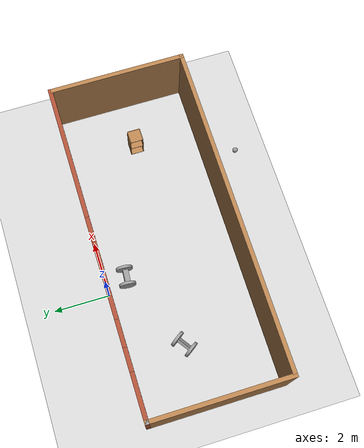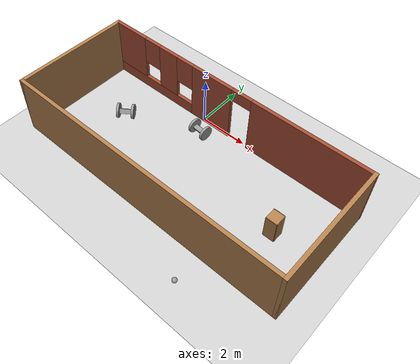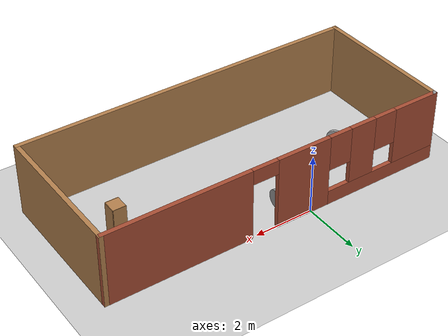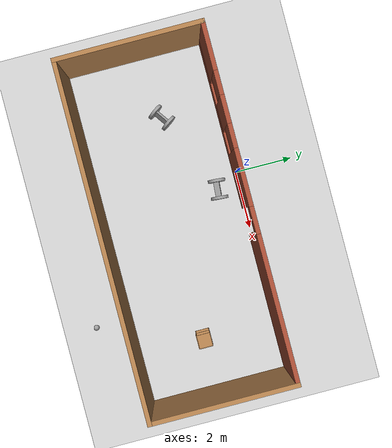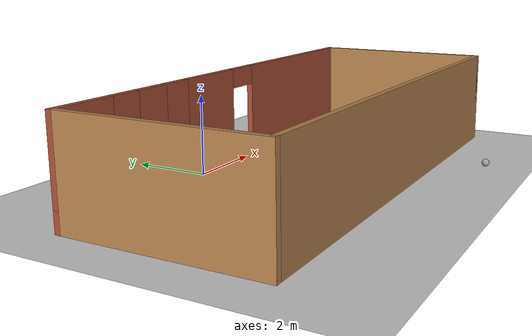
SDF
<sdf version="1.6">
 <world name="default">
  <light name="sun" type="directional">
   <pose>0 0 10 0 -0 0</pose>
   <diffuse>0.8 0.8 0.8 1</diffuse>
   <specular>0.2 0.2 0.2 1</specular>
   <attenuation>
    <range>1000</range>
    <constant>0.9</constant>
    <linear>0.01</linear>
    <quadratic>0.001</quadratic>
   </attenuation>
   <direction>-0.5 0.1 -0.9</direction>
  </light>
  <model name="ground_plane">
   <static>1</static>
   <link name="link">
    <collision name="collision">
     <geometry><plane><normal>0 0 1</normal><size>100 100</size></plane></geometry>
     <surface>
      <contact><collide_bitmask>65535</collide_bitmask></contact>
      <friction><ode><mu>100</mu><mu2>50</mu2></ode></friction>
     </surface>
    </collision>
    <visual name="visual">
     <cast_shadows>0</cast_shadows>
     <geometry><plane><normal>0 0 1</normal><size>100 100</size></plane></geometry>
     <material>
      <script><uri>file://media/materials/scripts/gazebo.material</uri><name>Gazebo/Grey</name></script>
     </material>
    </visual>
   </link>
  </model>
  <gravity>0 0 -9.8</gravity>
  <magnetic_field>6e-06 2.3e-05 -4.2e-05</magnetic_field>
  <atmosphere type="adiabatic"/>
  <physics name="default_physics" default="0" type="ode">
   <max_step_size>0.001</max_step_size>
   <real_time_factor>1</real_time_factor>
   <real_time_update_rate>1000</real_time_update_rate>
  </physics>
  <scene><ambient>0.4 0.4 0.4 1</ambient><background>0.7 0.7 0.7 1</background><shadows>1</shadows></scene>
  <spherical_coordinates>
   <surface_model>EARTH_WGS84</surface_model>
   <latitude_deg>0</latitude_deg>
   <longitude_deg>0</longitude_deg>
   <elevation>0</elevation>
   <heading_deg>0</heading_deg>
  </spherical_coordinates>
  <model name="wheeled_1">
   <link name="link_0">
    <pose>-0 -0.013335 0 0 -0 0</pose>
    <inertial>
     <mass>1</mass>
     <inertia>
      <ixx>0.166667</ixx>
      <ixy>0</ixy>
      <ixz>0</ixz>
      <iyy>0.166667</iyy>
      <iyz>0</iyz>
      <izz>0.166667</izz>
     </inertia>
    </inertial>
    <visual name="visual">
     <geometry><box><size>0.5 0.2 0.1</size></box></geometry>
     <material>
      <lighting>1</lighting>
      <script><uri>file://media/materials/scripts/gazebo.material</uri><name>Gazebo/Grey</name></script>
      <shader type="pixel"><normal_map>__default__</normal_map></shader>
      <ambient>0.3 0.3 0.3 1</ambient>
      <diffuse>0.7 0.7 0.7 1</diffuse>
      <specular>0.01 0.01 0.01 1</specular>
      <emissive>0 0 0 1</emissive>
     </material>
    </visual>
    <collision name="collision">
     <geometry><box><size>0.5 0.2 0.1</size></box></geometry>
     <surface>
      <friction>
       <ode><mu>1</mu><mu2>1</mu2><fdir1>0 0 0</fdir1><slip1>0</slip1><slip2>0</slip2></ode>
       <torsional>
        <coefficient>1</coefficient>
        <patch_radius>0</patch_radius>
        <surface_radius>0</surface_radius>
        <use_patch_radius>1</use_patch_radius>
        <ode><slip>0</slip></ode>
       </torsional>
      </friction>
      <bounce><restitution_coefficient>0</restitution_coefficient><threshold>1e+06</threshold></bounce>
      <contact>
       <collide_without_contact>0</collide_without_contact>
       <collide_without_contact_bitmask>1</collide_without_contact_bitmask>
       <collide_bitmask>1</collide_bitmask>
       <ode>
        <soft_cfm>0</soft_cfm>
        <soft_erp>0.2</soft_erp>
        <kp>1e+13</kp>
        <kd>1</kd>
        <max_vel>0.01</max_vel>
        <min_depth>0</min_depth>
       </ode>
       <bullet>
        <split_impulse>1</split_impulse>
        <split_impulse_penetration_threshold>-0.01</split_impulse_penetration_threshold>
        <soft_cfm>0</soft_cfm>
        <soft_erp>0.2</soft_erp>
        <kp>1e+13</kp>
        <kd>1</kd>
       </bullet>
      </contact>
     </surface>
    </collision>
   </link>
   <link name="link_1">
    <pose>0.300058 0.00667 0 1.5707 0 1.5707</pose>
    <inertial>
     <mass>1</mass>
     <inertia><ixx>0.145833</ixx><ixy>0</ixy><ixz>0</ixz><iyy>0.145833</iyy><iyz>0</iyz><izz>0.125</izz></inertia>
    </inertial>
    <visual name="visual">
     <geometry><cylinder><radius>0.3</radius><length>0.1</length></cylinder></geometry>
     <material>
      <lighting>1</lighting>
      <script><uri>file://media/materials/scripts/gazebo.material</uri><name>Gazebo/Grey</name></script>
      <shader type="pixel"><normal_map>__default__</normal_map></shader>
      <ambient>0.3 0.3 0.3 1</ambient>
      <diffuse>0.7 0.7 0.7 1</diffuse>
      <specular>0.01 0.01 0.01 1</specular>
      <emissive>0 0 0 1</emissive>
     </material>
    </visual>
    <collision name="collision">
     <geometry><cylinder><radius>0.3</radius><length>0.1</length></cylinder></geometry>
     <surface>
      <friction>
       <ode><mu>1</mu><mu2>1</mu2><fdir1>0 0 0</fdir1><slip1>0</slip1><slip2>0</slip2></ode>
       <torsional>
        <coefficient>1</coefficient>
        <patch_radius>0</patch_radius>
        <surface_radius>0</surface_radius>
        <use_patch_radius>1</use_patch_radius>
        <ode><slip>0</slip></ode>
       </torsional>
      </friction>
      <bounce><restitution_coefficient>0</restitution_coefficient><threshold>1e+06</threshold></bounce>
      <contact>
       <collide_without_contact>0</collide_without_contact>
       <collide_without_contact_bitmask>1</collide_without_contact_bitmask>
       <collide_bitmask>1</collide_bitmask>
       <ode>
        <soft_cfm>0</soft_cfm>
        <soft_erp>0.2</soft_erp>
        <kp>1e+13</kp>
        <kd>1</kd>
        <max_vel>0.01</max_vel>
        <min_depth>0</min_depth>
       </ode>
       <bullet>
        <split_impulse>1</split_impulse>
        <split_impulse_penetration_threshold>-0.01</split_impulse_penetration_threshold>
        <soft_cfm>0</soft_cfm>
        <soft_erp>0.2</soft_erp>
        <kp>1e+13</kp>
        <kd>1</kd>
       </bullet>
      </contact>
     </surface>
    </collision>
   </link>
   <link name="link_1_clone">
    <pose>-0.300058 0.006665 0 1.5707 0 1.5707</pose>
    <inertial>
     <mass>1</mass>
     <inertia><ixx>0.145833</ixx><ixy>0</ixy><ixz>0</ixz><iyy>0.145833</iyy><iyz>0</iyz><izz>0.125</izz></inertia>
    </inertial>
    <visual name="visual">
     <geometry><cylinder><radius>0.3</radius><length>0.1</length></cylinder></geometry>
     <material>
      <lighting>1</lighting>
      <script><uri>file://media/materials/scripts/gazebo.material</uri><name>Gazebo/Grey</name></script>
      <shader type="pixel"><normal_map>__default__</normal_map></shader>
      <ambient>0.3 0.3 0.3 1</ambient>
      <diffuse>0.7 0.7 0.7 1</diffuse>
      <specular>0.01 0.01 0.01 1</specular>
      <emissive>0 0 0 1</emissive>
     </material>
    </visual>
    <collision name="collision">
     <geometry><cylinder><radius>0.3</radius><length>0.1</length></cylinder></geometry>
     <surface>
      <friction>
       <ode><mu>1</mu><mu2>1</mu2><fdir1>0 0 0</fdir1><slip1>0</slip1><slip2>0</slip2></ode>
       <torsional>
        <coefficient>1</coefficient>
        <patch_radius>0</patch_radius>
        <surface_radius>0</surface_radius>
        <use_patch_radius>1</use_patch_radius>
        <ode><slip>0</slip></ode>
       </torsional>
      </friction>
      <bounce><restitution_coefficient>0</restitution_coefficient><threshold>1e+06</threshold></bounce>
      <contact>
       <collide_without_contact>0</collide_without_contact>
       <collide_without_contact_bitmask>1</collide_without_contact_bitmask>
       <collide_bitmask>1</collide_bitmask>
       <ode>
        <soft_cfm>0</soft_cfm>
        <soft_erp>0.2</soft_erp>
        <kp>1e+13</kp>
        <kd>1</kd>
        <max_vel>0.01</max_vel>
        <min_depth>0</min_depth>
       </ode>
       <bullet>
        <split_impulse>1</split_impulse>
        <split_impulse_penetration_threshold>-0.01</split_impulse_penetration_threshold>
        <soft_cfm>0</soft_cfm>
        <soft_erp>0.2</soft_erp>
        <kp>1e+13</kp>
        <kd>1</kd>
       </bullet>
      </contact>
     </surface>
    </collision>
   </link>
   <joint name="link_0_JOINT_0" type="revolute">
    <parent>link_0</parent>
    <child>link_1_clone</child>
    <axis>
     <xyz>0 0 1</xyz>
     <use_parent_model_frame>0</use_parent_model_frame>
     <limit>
      <lower>-1.79769e+308</lower>
      <upper>1.79769e+308</upper>
      <effort>-1</effort>
      <velocity>-1</velocity>
     </limit>
     <dynamics>
      <spring_reference>0</spring_reference>
      <spring_stiffness>0</spring_stiffness>
      <damping>0</damping>
     </dynamics>
    </axis>
    <physics>
     <ode><limit><cfm>0</cfm><erp>0.2</erp></limit><suspension><cfm>0</cfm><erp>0.2</erp></suspension></ode>
    </physics>
   </joint>
   <joint name="link_0_JOINT_1" type="revolute">
    <parent>link_0</parent>
    <child>link_1</child>
    <axis>
     <xyz>0 0 -1</xyz>
     <use_parent_model_frame>0</use_parent_model_frame>
     <limit>
      <lower>-1.79769e+308</lower>
      <upper>1.79769e+308</upper>
      <effort>-1</effort>
      <velocity>-1</velocity>
     </limit>
     <dynamics>
      <spring_reference>0</spring_reference>
      <spring_stiffness>0</spring_stiffness>
      <damping>0</damping>
     </dynamics>
    </axis>
    <physics>
     <ode><limit><cfm>0</cfm><erp>0.2</erp></limit><suspension><cfm>0</cfm><erp>0.2</erp></suspension></ode>
    </physics>
   </joint>
   <static>0</static>
   <pose>0.420301 -0.762962 0.298182 0.276693 2e-06 -0.075275</pose>
  </model>
  <model name="rectangle_building_1">
   <pose>1.17854 -2.44652 0 0 -0 0</pose>
   <link name="Wall_13">
    <collision name="Wall_13_Collision">
     <geometry><box><size>0.15 0.15 2.5</size></box></geometry>
     <pose>0 0 1.25 0 -0 0</pose>
    </collision>
    <visual name="Wall_13_Visual">
     <pose>0 0 1.25 0 -0 0</pose>
     <geometry><box><size>0.15 0.15 2.5</size></box></geometry>
     <material>
      <script><uri>file://media/materials/scripts/gazebo.material</uri><name>Gazebo/Grey</name></script>
      <ambient>1 1 1 1</ambient>
     </material>
     <meta><layer>0</layer></meta>
    </visual>
    <pose>-5.925 2.425 0 0 -0 0</pose>
   </link>
   <link name="Wall_26">
    <collision name="Wall_26_Collision">
     <geometry><box><size>5 0.15 2.5</size></box></geometry>
     <pose>0 0 1.25 0 -0 0</pose>
    </collision>
    <visual name="Wall_26_Visual">
     <pose>0 0 1.25 0 -0 0</pose>
     <geometry><box><size>5 0.15 2.5</size></box></geometry>
     <material>
      <script><uri>file://media/materials/scripts/gazebo.material</uri><name>Gazebo/Wood</name></script>
      <ambient>1 1 1 1</ambient>
     </material>
     <meta><layer>0</layer></meta>
    </visual>
    <pose>-5.925 0 0 0 0 -1.5708</pose>
   </link>
   <link name="Wall_27">
    <collision name="Wall_27_Collision">
     <geometry><box><size>12 0.15 2.5</size></box></geometry>
     <pose>0 0 1.25 0 -0 0</pose>
    </collision>
    <visual name="Wall_27_Visual">
     <pose>0 0 1.25 0 -0 0</pose>
     <geometry><box><size>12 0.15 2.5</size></box></geometry>
     <material>
      <script><uri>file://media/materials/scripts/gazebo.material</uri><name>Gazebo/Wood</name></script>
      <ambient>0.435294 0.796078 0.67451 1</ambient>
     </material>
     <meta><layer>0</layer></meta>
    </visual>
    <pose>0 -2.425 0 0 -0 0</pose>
   </link>
   <link name="Wall_28">
    <collision name="Wall_28_Collision">
     <geometry><box><size>5 0.15 2.5</size></box></geometry>
     <pose>0 0 1.25 0 -0 0</pose>
    </collision>
    <visual name="Wall_28_Visual">
     <pose>0 0 1.25 0 -0 0</pose>
     <geometry><box><size>5 0.15 2.5</size></box></geometry>
     <material>
      <script><uri>file://media/materials/scripts/gazebo.material</uri><name>Gazebo/Wood</name></script>
      <ambient>0.996078 0.47451 0.0196078 1</ambient>
     </material>
     <meta><layer>0</layer></meta>
    </visual>
    <pose>5.925 0 0 0 -0 1.5708</pose>
   </link>
   <link name="Wall_29">
    <pose>0 2.425 0 0 -0 3.14159</pose>
    <visual name="Wall_29_Visual_0">
     <pose>-3.50367 0 1.25 0 -0 0</pose>
     <geometry><box><size>4.99266 0.15 2.5</size></box></geometry>
     <material>
      <script><uri>file://media/materials/scripts/gazebo.material</uri><name>Gazebo/Bricks</name></script>
      <ambient>1 1 1 1</ambient>
     </material>
     <meta><layer>0</layer></meta>
    </visual>
    <collision name="Wall_29_Collision_0">
     <geometry><box><size>4.99266 0.15 2.5</size></box></geometry>
     <pose>-3.50367 0 1.25 0 -0 0</pose>
    </collision>
    <visual name="Wall_29_Visual_1">
     <pose>0.843056 0 1.25 0 -0 0</pose>
     <geometry><box><size>1.9008 0.15 2.5</size></box></geometry>
     <material>
      <script><uri>file://media/materials/scripts/gazebo.material</uri><name>Gazebo/Bricks</name></script>
      <ambient>1 1 1 1</ambient>
     </material>
     <meta><layer>0</layer></meta>
    </visual>
    <collision name="Wall_29_Collision_1">
     <geometry><box><size>1.9008 0.15 2.5</size></box></geometry>
     <pose>0.843056 0 1.25 0 -0 0</pose>
    </collision>
    <visual name="Wall_29_Visual_2">
     <pose>3.89673 0 0.25 0 -0 0</pose>
     <geometry><box><size>4.20654 0.15 0.5</size></box></geometry>
     <material>
      <script><uri>file://media/materials/scripts/gazebo.material</uri><name>Gazebo/Bricks</name></script>
      <ambient>1 1 1 1</ambient>
     </material>
     <meta><layer>0</layer></meta>
    </visual>
    <collision name="Wall_29_Collision_2">
     <geometry><box><size>4.20654 0.15 0.5</size></box></geometry>
     <pose>3.89673 0 0.25 0 -0 0</pose>
    </collision>
    <visual name="Wall_29_Visual_3">
     <pose>3.05969 0 1.5 0 -0 0</pose>
     <geometry><box><size>0.932475 0.15 2</size></box></geometry>
     <material>
      <script><uri>file://media/materials/scripts/gazebo.material</uri><name>Gazebo/Bricks</name></script>
      <ambient>1 1 1 1</ambient>
     </material>
     <meta><layer>0</layer></meta>
    </visual>
    <collision name="Wall_29_Collision_3">
     <geometry><box><size>0.932475 0.15 2</size></box></geometry>
     <pose>3.05969 0 1.5 0 -0 0</pose>
    </collision>
    <visual name="Wall_29_Visual_4">
     <pose>5.16297 0 1.5 0 -0 0</pose>
     <geometry><box><size>1.67407 0.15 2</size></box></geometry>
     <material>
      <script><uri>file://media/materials/scripts/gazebo.material</uri><name>Gazebo/Bricks</name></script>
      <ambient>1 1 1 1</ambient>
     </material>
     <meta><layer>0</layer></meta>
    </visual>
    <collision name="Wall_29_Collision_4">
     <geometry><box><size>1.67407 0.15 2</size></box></geometry>
     <pose>5.16297 0 1.5 0 -0 0</pose>
    </collision>
    <visual name="Wall_29_Visual_5">
     <pose>2.19346 0 1.9 0 -0 0</pose>
     <geometry><box><size>0.8 0.15 1.2</size></box></geometry>
     <material>
      <script><uri>file://media/materials/scripts/gazebo.material</uri><name>Gazebo/Bricks</name></script>
      <ambient>1 1 1 1</ambient>
     </material>
     <meta><layer>0</layer></meta>
    </visual>
    <collision name="Wall_29_Collision_5">
     <geometry><box><size>0.8 0.15 1.2</size></box></geometry>
     <pose>2.19346 0 1.9 0 -0 0</pose>
    </collision>
    <visual name="Wall_29_Visual_6">
     <pose>3.92593 0 1.9 0 -0 0</pose>
     <geometry><box><size>0.8 0.15 1.2</size></box></geometry>
     <material>
      <script><uri>file://media/materials/scripts/gazebo.material</uri><name>Gazebo/Bricks</name></script>
      <ambient>1 1 1 1</ambient>
     </material>
     <meta><layer>0</layer></meta>
    </visual>
    <collision name="Wall_29_Collision_6">
     <geometry><box><size>0.8 0.15 1.2</size></box></geometry>
     <pose>3.92593 0 1.9 0 -0 0</pose>
    </collision>
    <visual name="Wall_29_Visual_7">
     <pose>-0.557344 0 2.25 0 -0 0</pose>
     <geometry><box><size>0.9 0.15 0.5</size></box></geometry>
     <material>
      <script><uri>file://media/materials/scripts/gazebo.material</uri><name>Gazebo/Bricks</name></script>
      <ambient>1 1 1 1</ambient>
     </material>
     <meta><layer>0</layer></meta>
    </visual>
    <collision name="Wall_29_Collision_7">
     <geometry><box><size>0.9 0.15 0.5</size></box></geometry>
     <pose>-0.557344 0 2.25 0 -0 0</pose>
    </collision>
   </link>
   <static>1</static>
  </model>
  <model name="wheeled_1_clone">
   <link name="link_0">
    <pose>-0 -0.013335 0 0 -0 0</pose>
    <inertial>
     <mass>1</mass>
     <inertia>
      <ixx>0.166667</ixx>
      <ixy>0</ixy>
      <ixz>0</ixz>
      <iyy>0.166667</iyy>
      <iyz>0</iyz>
      <izz>0.166667</izz>
     </inertia>
    </inertial>
    <visual name="visual">
     <geometry><box><size>0.5 0.2 0.1</size></box></geometry>
     <material>
      <lighting>1</lighting>
      <script><uri>file://media/materials/scripts/gazebo.material</uri><name>Gazebo/Grey</name></script>
      <shader type="pixel"><normal_map>__default__</normal_map></shader>
      <ambient>0.3 0.3 0.3 1</ambient>
      <diffuse>0.7 0.7 0.7 1</diffuse>
      <specular>0.01 0.01 0.01 1</specular>
      <emissive>0 0 0 1</emissive>
     </material>
    </visual>
    <collision name="collision">
     <geometry><box><size>0.5 0.2 0.1</size></box></geometry>
     <surface>
      <friction>
       <ode><mu>1</mu><mu2>1</mu2><fdir1>0 0 0</fdir1><slip1>0</slip1><slip2>0</slip2></ode>
       <torsional>
        <coefficient>1</coefficient>
        <patch_radius>0</patch_radius>
        <surface_radius>0</surface_radius>
        <use_patch_radius>1</use_patch_radius>
        <ode><slip>0</slip></ode>
       </torsional>
      </friction>
      <bounce><restitution_coefficient>0</restitution_coefficient><threshold>1e+06</threshold></bounce>
      <contact>
       <collide_without_contact>0</collide_without_contact>
       <collide_without_contact_bitmask>1</collide_without_contact_bitmask>
       <collide_bitmask>1</collide_bitmask>
       <ode>
        <soft_cfm>0</soft_cfm>
        <soft_erp>0.2</soft_erp>
        <kp>1e+13</kp>
        <kd>1</kd>
        <max_vel>0.01</max_vel>
        <min_depth>0</min_depth>
       </ode>
       <bullet>
        <split_impulse>1</split_impulse>
        <split_impulse_penetration_threshold>-0.01</split_impulse_penetration_threshold>
        <soft_cfm>0</soft_cfm>
        <soft_erp>0.2</soft_erp>
        <kp>1e+13</kp>
        <kd>1</kd>
       </bullet>
      </contact>
     </surface>
    </collision>
   </link>
   <link name="link_1">
    <pose>0.300058 0.00667 0 1.5707 0 1.5707</pose>
    <inertial>
     <mass>1</mass>
     <inertia><ixx>0.145833</ixx><ixy>0</ixy><ixz>0</ixz><iyy>0.145833</iyy><iyz>0</iyz><izz>0.125</izz></inertia>
    </inertial>
    <visual name="visual">
     <geometry><cylinder><radius>0.3</radius><length>0.1</length></cylinder></geometry>
     <material>
      <lighting>1</lighting>
      <script><uri>file://media/materials/scripts/gazebo.material</uri><name>Gazebo/Grey</name></script>
      <shader type="pixel"><normal_map>__default__</normal_map></shader>
      <ambient>0.3 0.3 0.3 1</ambient>
      <diffuse>0.7 0.7 0.7 1</diffuse>
      <specular>0.01 0.01 0.01 1</specular>
      <emissive>0 0 0 1</emissive>
     </material>
    </visual>
    <collision name="collision">
     <geometry><cylinder><radius>0.3</radius><length>0.1</length></cylinder></geometry>
     <surface>
      <friction>
       <ode><mu>1</mu><mu2>1</mu2><fdir1>0 0 0</fdir1><slip1>0</slip1><slip2>0</slip2></ode>
       <torsional>
        <coefficient>1</coefficient>
        <patch_radius>0</patch_radius>
        <surface_radius>0</surface_radius>
        <use_patch_radius>1</use_patch_radius>
        <ode><slip>0</slip></ode>
       </torsional>
      </friction>
      <bounce><restitution_coefficient>0</restitution_coefficient><threshold>1e+06</threshold></bounce>
      <contact>
       <collide_without_contact>0</collide_without_contact>
       <collide_without_contact_bitmask>1</collide_without_contact_bitmask>
       <collide_bitmask>1</collide_bitmask>
       <ode>
        <soft_cfm>0</soft_cfm>
        <soft_erp>0.2</soft_erp>
        <kp>1e+13</kp>
        <kd>1</kd>
        <max_vel>0.01</max_vel>
        <min_depth>0</min_depth>
       </ode>
       <bullet>
        <split_impulse>1</split_impulse>
        <split_impulse_penetration_threshold>-0.01</split_impulse_penetration_threshold>
        <soft_cfm>0</soft_cfm>
        <soft_erp>0.2</soft_erp>
        <kp>1e+13</kp>
        <kd>1</kd>
       </bullet>
      </contact>
     </surface>
    </collision>
   </link>
   <link name="link_1_clone">
    <pose>-0.300058 0.006665 0 1.5707 0 1.5707</pose>
    <inertial>
     <mass>1</mass>
     <inertia><ixx>0.145833</ixx><ixy>0</ixy><ixz>0</ixz><iyy>0.145833</iyy><iyz>0</iyz><izz>0.125</izz></inertia>
    </inertial>
    <visual name="visual">
     <geometry><cylinder><radius>0.3</radius><length>0.1</length></cylinder></geometry>
     <material>
      <lighting>1</lighting>
      <script><uri>file://media/materials/scripts/gazebo.material</uri><name>Gazebo/Grey</name></script>
      <shader type="pixel"><normal_map>__default__</normal_map></shader>
      <ambient>0.3 0.3 0.3 1</ambient>
      <diffuse>0.7 0.7 0.7 1</diffuse>
      <specular>0.01 0.01 0.01 1</specular>
      <emissive>0 0 0 1</emissive>
     </material>
    </visual>
    <collision name="collision">
     <geometry><cylinder><radius>0.3</radius><length>0.1</length></cylinder></geometry>
     <surface>
      <friction>
       <ode><mu>1</mu><mu2>1</mu2><fdir1>0 0 0</fdir1><slip1>0</slip1><slip2>0</slip2></ode>
       <torsional>
        <coefficient>1</coefficient>
        <patch_radius>0</patch_radius>
        <surface_radius>0</surface_radius>
        <use_patch_radius>1</use_patch_radius>
        <ode><slip>0</slip></ode>
       </torsional>
      </friction>
      <bounce><restitution_coefficient>0</restitution_coefficient><threshold>1e+06</threshold></bounce>
      <contact>
       <collide_without_contact>0</collide_without_contact>
       <collide_without_contact_bitmask>1</collide_without_contact_bitmask>
       <collide_bitmask>1</collide_bitmask>
       <ode>
        <soft_cfm>0</soft_cfm>
        <soft_erp>0.2</soft_erp>
        <kp>1e+13</kp>
        <kd>1</kd>
        <max_vel>0.01</max_vel>
        <min_depth>0</min_depth>
       </ode>
       <bullet>
        <split_impulse>1</split_impulse>
        <split_impulse_penetration_threshold>-0.01</split_impulse_penetration_threshold>
        <soft_cfm>0</soft_cfm>
        <soft_erp>0.2</soft_erp>
        <kp>1e+13</kp>
        <kd>1</kd>
       </bullet>
      </contact>
     </surface>
    </collision>
   </link>
   <joint name="link_0_JOINT_0" type="revolute">
    <parent>link_0</parent>
    <child>link_1_clone</child>
    <axis>
     <xyz>0 0 1</xyz>
     <use_parent_model_frame>0</use_parent_model_frame>
     <limit>
      <lower>-1.79769e+308</lower>
      <upper>1.79769e+308</upper>
      <effort>-1</effort>
      <velocity>-1</velocity>
     </limit>
     <dynamics>
      <spring_reference>0</spring_reference>
      <spring_stiffness>0</spring_stiffness>
      <damping>0</damping>
     </dynamics>
    </axis>
    <physics>
     <ode><limit><cfm>0</cfm><erp>0.2</erp></limit><suspension><cfm>0</cfm><erp>0.2</erp></suspension></ode>
    </physics>
   </joint>
   <joint name="link_0_JOINT_1" type="revolute">
    <parent>link_0</parent>
    <child>link_1</child>
    <axis>
     <xyz>0 0 -1</xyz>
     <use_parent_model_frame>0</use_parent_model_frame>
     <limit>
      <lower>-1.79769e+308</lower>
      <upper>1.79769e+308</upper>
      <effort>-1</effort>
      <velocity>-1</velocity>
     </limit>
     <dynamics>
      <spring_reference>0</spring_reference>
      <spring_stiffness>0</spring_stiffness>
      <damping>0</damping>
     </dynamics>
    </axis>
    <physics>
     <ode><limit><cfm>0</cfm><erp>0.2</erp></limit><suspension><cfm>0</cfm><erp>0.2</erp></suspension></ode>
    </physics>
   </joint>
   <static>0</static>
   <pose>-2.47829 -2.0137 0.294528 0.963074 7e-06 0.612226</pose>
  </model>
  <plugin name="hello_world" filename="libhello_world.so"/>
  <model name="cabinet">
   <static>1</static>
   <link name="cabinet_bottom_plate">
    <inertial>
     <pose>0 0 -1 0 -0 0</pose>
     <inertia><ixx>2.05</ixx><ixy>0</ixy><ixz>0</ixz><iyy>2.05</iyy><iyz>0</iyz><izz>2.05</izz></inertia>
     <mass>25</mass>
    </inertial>
    <collision name="cabinet_bottom_plate_geom">
     <pose>0 0 0.01 0 -0 0</pose>
     <geometry><box><size>0.45 0.45 0.02</size></box></geometry>
    </collision>
    <visual name="cabinet_bottom_plate_geom_visual">
     <pose>0 0 0.01 0 -0 0</pose>
     <geometry><box><size>0.45 0.45 0.02</size></box></geometry>
     <material>
      <script><uri>file://media/materials/scripts/gazebo.material</uri><name>Gazebo/Wood</name></script>
     </material>
    </visual>
    <collision name="cabinet_bottom_plate_geom_cabinet_back_plate">
     <pose>0.235 0 0.51 0 -0 0</pose>
     <geometry><box><size>0.02 0.45 1.02</size></box></geometry>
    </collision>
    <visual name="cabinet_bottom_plate_geom_cabinet_back_plate_visual">
     <pose>0.235 0 0.51 0 -0 0</pose>
     <geometry><box><size>0.02 0.45 1.02</size></box></geometry>
     <material>
      <script><uri>file://media/materials/scripts/gazebo.material</uri><name>Gazebo/Wood</name></script>
     </material>
    </visual>
    <collision name="cabinet_bottom_plate_geom_cabinet_left_plate">
     <pose>0 0.235 0.51 0 -0 0</pose>
     <geometry><box><size>0.45 0.02 1.02</size></box></geometry>
    </collision>
    <visual name="cabinet_bottom_plate_geom_cabinet_left_plate_visual">
     <pose>0 0.235 0.51 0 -0 0</pose>
     <geometry><box><size>0.45 0.02 1.02</size></box></geometry>
     <material>
      <script><uri>file://media/materials/scripts/gazebo.material</uri><name>Gazebo/Wood</name></script>
     </material>
    </visual>
    <collision name="cabinet_bottom_plate_geom_cabinet_middle_plate">
     <pose>0 0 0.51 0 -0 0</pose>
     <geometry><box><size>0.45 0.45 0.02</size></box></geometry>
    </collision>
    <visual name="cabinet_bottom_plate_geom_cabinet_middle_plate_visual">
     <pose>0 0 0.51 0 -0 0</pose>
     <geometry><box><size>0.45 0.45 0.02</size></box></geometry>
     <material>
      <script><uri>file://media/materials/scripts/gazebo.material</uri><name>Gazebo/Wood</name></script>
     </material>
    </visual>
    <collision name="cabinet_bottom_plate_geom_cabinet_right_plate">
     <pose>0 -0.235 0.51 0 -0 0</pose>
     <geometry><box><size>0.45 0.02 1.02</size></box></geometry>
    </collision>
    <visual name="cabinet_bottom_plate_geom_cabinet_right_plate_visual">
     <pose>0 -0.235 0.51 0 -0 0</pose>
     <geometry><box><size>0.45 0.02 1.02</size></box></geometry>
     <material>
      <script><uri>file://media/materials/scripts/gazebo.material</uri><name>Gazebo/Wood</name></script>
     </material>
    </visual>
    <collision name="cabinet_bottom_plate_geom_cabinet_top_plate">
     <pose>0 0 1.01 0 -0 0</pose>
     <geometry><box><size>0.45 0.45 0.02</size></box></geometry>
    </collision>
    <visual name="cabinet_bottom_plate_geom_cabinet_top_plate_visual">
     <pose>0 0 1.01 0 -0 0</pose>
     <geometry><box><size>0.45 0.45 0.02</size></box></geometry>
     <material>
      <script><uri>file://media/materials/scripts/gazebo.material</uri><name>Gazebo/Wood</name></script>
     </material>
    </visual>
   </link>
   <pose>5.25842 -2.54142 0 0 -0 0</pose>
  </model>
  <model name="my_ball">
   <link name="link_0">
    <inertial>
     <mass>1</mass>
     <inertia><ixx>0.1</ixx><ixy>0</ixy><ixz>0</ixz><iyy>0.1</iyy><iyz>0</iyz><izz>0.1</izz></inertia>
    </inertial>
    <visual name="visual">
     <geometry><sphere><radius>0.1</radius></sphere></geometry>
     <material>
      <lighting>1</lighting>
      <script><uri>file://media/materials/scripts/gazebo.material</uri><name>Gazebo/Grey</name></script>
      <shader type="pixel"><normal_map>__default__</normal_map></shader>
      <ambient>1 1 1 1</ambient>
      <diffuse>1 1 1 1</diffuse>
      <specular>1 1 1 1</specular>
      <emissive>1 1 1 1</emissive>
     </material>
    </visual>
    <collision name="collision">
     <geometry><sphere><radius>0.1</radius></sphere></geometry>
     <surface>
      <friction>
       <ode><mu>1</mu><mu2>1</mu2><fdir1>0 0 0</fdir1><slip1>0</slip1><slip2>0</slip2></ode>
       <torsional>
        <coefficient>1</coefficient>
        <patch_radius>0</patch_radius>
        <surface_radius>0</surface_radius>
        <use_patch_radius>1</use_patch_radius>
        <ode><slip>0</slip></ode>
       </torsional>
      </friction>
      <bounce><restitution_coefficient>0</restitution_coefficient><threshold>1e+06</threshold></bounce>
      <contact>
       <collide_without_contact>0</collide_without_contact>
       <collide_without_contact_bitmask>1</collide_without_contact_bitmask>
       <collide_bitmask>1</collide_bitmask>
       <ode>
        <soft_cfm>0</soft_cfm>
        <soft_erp>0.2</soft_erp>
        <kp>1e+13</kp>
        <kd>1</kd>
        <max_vel>0.01</max_vel>
        <min_depth>0</min_depth>
       </ode>
       <bullet>
        <split_impulse>1</split_impulse>
        <split_impulse_penetration_threshold>-0.01</split_impulse_penetration_threshold>
        <soft_cfm>0</soft_cfm>
        <soft_erp>0.2</soft_erp>
        <kp>1e+13</kp>
        <kd>1</kd>
       </bullet>
      </contact>
     </surface>
    </collision>
   </link>
   <static>0</static>
   <pose>4.02231 -6.09248 0.1 0 -0 0</pose>
  </model>
 </world>
</sdf>
